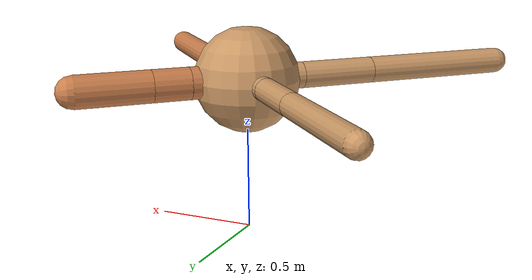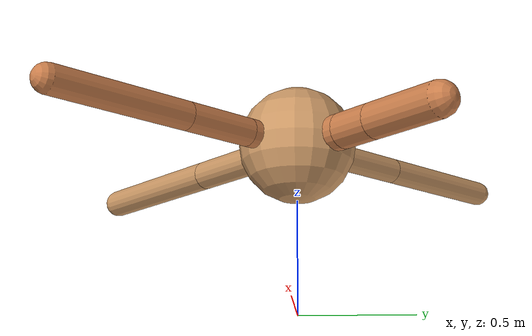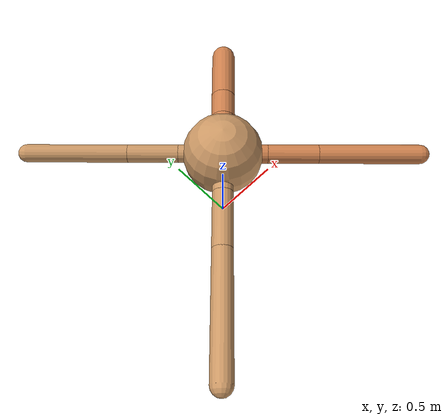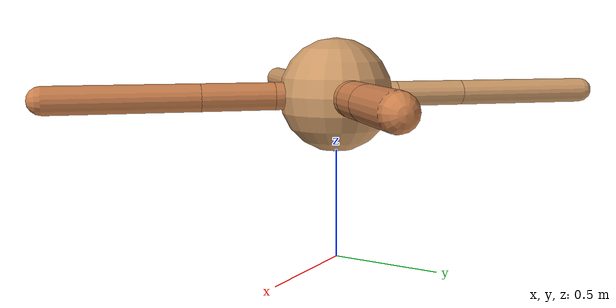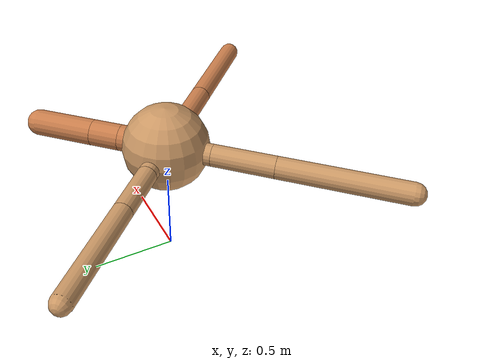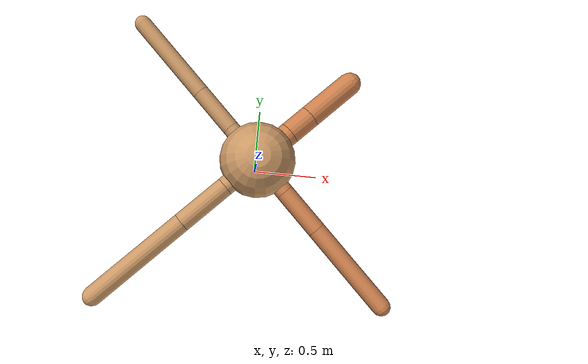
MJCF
<?xml version="1.0" ?>
<mujoco model="ant">

	<compiler angle="degree" coordinate="local" inertiafromgeom="true"/>

	<option integrator="RK4" timestep="0.01"/>

	<custom>

		<numeric data="0.0 0.0 0.55 1.0 0.0 0.0 0.0 0.0 1.0 0.0 -1.0 0.0 -1.0 0.0 1.0" name="init_qpos"/>

	</custom>

	<default>

		<joint armature="1" damping="1" limited="true"/>

		<geom conaffinity="0" condim="3" density="5.0" friction="1.5 0.1 0.1" margin="0.01" rgba="0.8 0.6 0.4 1"/>

	</default>

	<worldbody>

		<body name="torso" pos="0 0 0.75">

			<geom name="torso_geom" pos="0 0 0" size="0.2558918444969251" type="sphere"/>

			<!--joint armature="0" damping="0" limited="false" margin="0.01" name="root" pos="0 0 0" type="free"/-->

			<body name="front_left_leg" pos="0 0 0">

				<geom fromto="0 0 0 0.2 0.2 0" name="aux_1_geom" size="0.07837249950034302" type="capsule" rgba=".8 .5 .3 1"/>

				<body name="aux_1" pos="0.2 0.2 0">

					<joint axis="0 0 1" name="hip_1" pos="0.0 0.0 0.0" range="-40 40" type="hinge"/>

					<geom fromto="0 0 0 0.12626136527740836 0.12626136527740836 0" name="left_leg_geom" size="0.07837249950034302" type="capsule" rgba=".8 .5 .3 1"/>

					<body pos="0.12626136527740836 0.12626136527740836 0" name="front_left_foot">

						<joint axis="-1 1 0" name="ankle_1" pos="0.0 0.0 0.0" range="30 100" type="hinge"/>

						<geom fromto="0 0 0 0.2525227305548167 0.2525227305548167 0" name="left_ankle_geom" size="0.07837249950034302" type="capsule" rgba=".8 .5 .3 1"/>

					</body>

				</body>

			</body>

			<body name="front_right_leg" pos="0 0 0">

				<geom fromto="0 0 0 -0.2 0.2 0" name="aux_2_geom" size="0.05705279753055672" type="capsule"/>

				<body name="aux_2" pos="-0.2 0.2 0">

					<joint axis="0 0 1" name="hip_2" pos="0.0 0.0 0.0" range="-40 40" type="hinge"/>

					<geom fromto="0 0 0 -0.2252057330802591 0.2252057330802591 0" name="right_leg_geom" size="0.05705279753055672" type="capsule"/>

					<body pos="-0.2252057330802591 0.2252057330802591 0" name="front_right_foot">

						<joint axis="1 1 0" name="ankle_2" pos="0.0 0.0 0.0" range="-100 -30" type="hinge"/>

						<geom fromto="0 0 0 -0.4504114661605182 0.4504114661605182 0" name="right_ankle_geom" size="0.05705279753055672" type="capsule"/>

					</body>

				</body>

			</body>

			<body name="left_back_leg" pos="0 0 0">

				<geom fromto="0 0 0 -0.2 -0.2 0" name="aux_3_geom" size="0.06521480613042287" type="capsule"/>

				<body name="aux_3" pos="-0.2 -0.2 0">

					<joint axis="0 0 1" name="hip_3" pos="0.0 0.0 0.0" range="-40 40" type="hinge"/>

					<geom fromto="0 0 0 -0.2624953400104774 -0.2624953400104774 0" name="back_leg_geom" size="0.06521480613042287" type="capsule"/>

					<body pos="-0.2624953400104774 -0.2624953400104774 0" name="left_back_foot">

						<joint axis="-1 1 0" name="ankle_3" pos="0.0 0.0 0.0" range="-100 -30" type="hinge"/>

						<geom fromto="0 0 0 -0.5249906800209548 -0.5249906800209548 0" name="third_ankle_geom" size="0.06521480613042287" type="capsule"/>

					</body>

				</body>

			</body>

			<body name="right_back_leg" pos="0 0 0">

				<geom fromto="0 0 0 0.2 -0.2 0" name="aux_4_geom" size="0.061123111523480864" type="capsule" rgba=".8 .5 .3 1"/>

				<body name="aux_4" pos="0.2 -0.2 0">

					<joint axis="0 0 1" name="hip_4" pos="0.0 0.0 0.0" range="-40 40" type="hinge"/>

					<geom fromto="0 0 0 0.22657901522696441 -0.22657901522696441 0" name="rightback_leg_geom" size="0.061123111523480864" type="capsule" rgba=".8 .5 .3 1"/>

					<body pos="0.22657901522696441 -0.22657901522696441 0" name="right_back_foot">

						<joint axis="1 1 0" name="ankle_4" pos="0.0 0.0 0.0" range="30 100" type="hinge"/>

						<geom fromto="0 0 0 0.45315803045392883 -0.45315803045392883 0" name="fourth_ankle_geom" size="0.061123111523480864" type="capsule" rgba=".8 .5 .3 1"/>

					</body>

				</body>

			</body>

		</body>

	</worldbody>

	<actuator>

		<motor ctrllimited="true" ctrlrange="-1.0 1.0" joint="hip_4" gear="150"/>

		<motor ctrllimited="true" ctrlrange="-1.0 1.0" joint="ankle_4" gear="150"/>

		<motor ctrllimited="true" ctrlrange="-1.0 1.0" joint="hip_1" gear="150"/>

		<motor ctrllimited="true" ctrlrange="-1.0 1.0" joint="ankle_1" gear="150"/>

		<motor ctrllimited="true" ctrlrange="-1.0 1.0" joint="hip_2" gear="150"/>

		<motor ctrllimited="true" ctrlrange="-1.0 1.0" joint="ankle_2" gear="150"/>

		<motor ctrllimited="true" ctrlrange="-1.0 1.0" joint="hip_3" gear="150"/>

		<motor ctrllimited="true" ctrlrange="-1.0 1.0" joint="ankle_3" gear="150"/>

	</actuator>

</mujoco>
